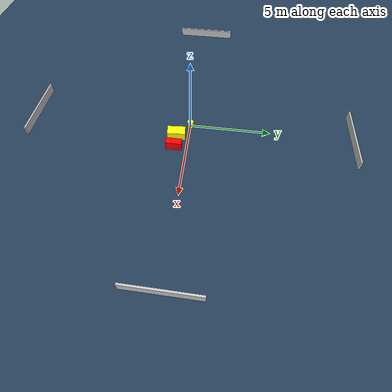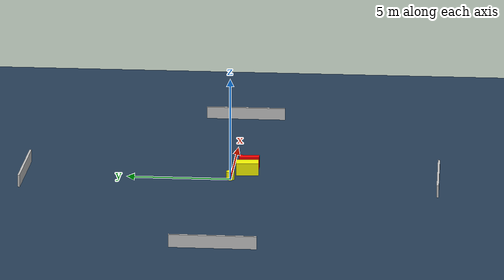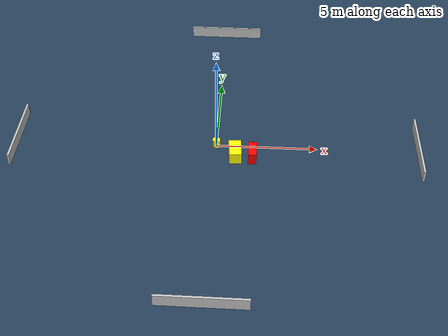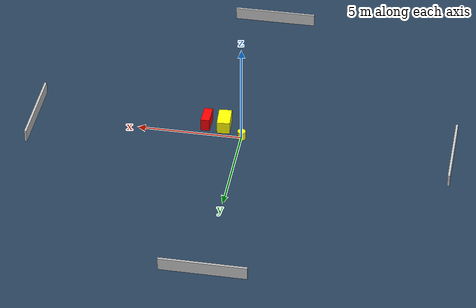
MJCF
<?xml version="1.0" ?>
<mujoco model="generated_environment">
  <option timestep="0.01" integrator="RK4" cone="elliptic"/>
  <default>
    <geom density="1"/>
  </default>
  <asset>
    <texture builtin="gradient" height="3072" name="skybox" rgb1="0.3 0.5 0.7" rgb2="0 0 0" type="skybox" width="512"/>
    <texture builtin="checker" height="300" name="groundplane" rgb1="0.2 0.3 0.4" rgb2="0.1 0.2 0.3" type="2d" width="300"/>
    <material name="groundplane" reflectance="0.2" texrepeat="5 5" texture="groundplane"/>
  </asset>
  <worldbody>
    <light dir="0 0 -1" directional="true" pos="0 0 1.5"/>
    <geom condim="3" friction="0.5 0.005 0.001" material="groundplane" name="floor" pos="0 0 0" size="0 0 0.05" type="plane"/>
    <body name="walls">
      <geom name="wall_1" condim="4" pos="-10.0 0.0 0.3" rgba="0.800000011920929 0.800000011920929 0.800000011920929 1.0" size="0.05 2.0 0.3" type="box"/>
      <geom name="wall_2" condim="4" pos="10.0 0.0 0.3" rgba="0.800000011920929 0.800000011920929 0.800000011920929 1.0" size="0.05 2.0 0.3" type="box"/>
      <geom name="wall_3" condim="4" pos="0.0 -10.0 0.3" rgba="0.800000011920929 0.800000011920929 0.800000011920929 1.0" size="2.0 0.05 0.3" type="box"/>
      <geom name="wall_4" condim="4" pos="0.0 10.0 0.3" rgba="0.800000011920929 0.800000011920929 0.800000011920929 1.0" size="2.0 0.05 0.3" type="box"/>
    </body>
    <body name="robot">
      <joint name="joint_x" type="slide" pos="0 0 0" axis="1 0 0"/>
      <joint name="joint_y" type="slide" pos="0 0 0" axis="0 1 0"/>
      <geom name="robot" type="cylinder" pos="0.0 0.0 0.2" size="0.2 0.2 0.0" mass="5.0" friction="1.0 0.005 0.0001" condim="4" rgba="1.0 1.0 0.0 1.0"/>
    </body>
    <body name="obstacle_1_movable">
      <geom name="obstacle_1_movable" condim="4" pos="0.9590626487112787 -0.7471341262621297 0.3" euler="0 0 184.4118589649979" friction="0.0 0.005 0.001" rgba="1.0 1.0 0.0 1.0" size="0.3067574187247961 0.544517755090448 0.3" type="box" mass="0.1"/>
      <joint type="free"/>
    </body>
    <body name="obstacle_2_static">
      <geom name="obstacle_2_static" condim="4" pos="1.8149672643565407 -0.7796292453173342 0.3" euler="0 0 179.79800313727958" friction="0.0 0.005 0.001" rgba="1.0 0.0 0.0 1.0" size="0.2058112204451521 0.4841627490029134 0.3" type="box"/>
    </body>
  </worldbody>
  <actuator>
    <motor name="actuator_x" joint="joint_x" gear="1" ctrlrange="-1 1"/>
    <motor name="actuator_y" joint="joint_y" gear="1" ctrlrange="-1 1"/>
  </actuator>
</mujoco>
